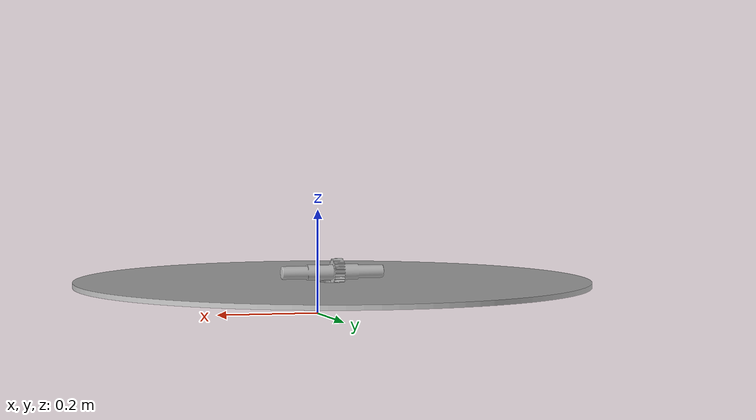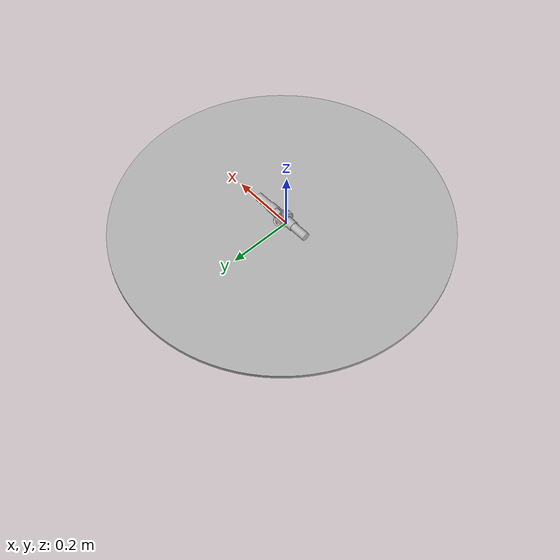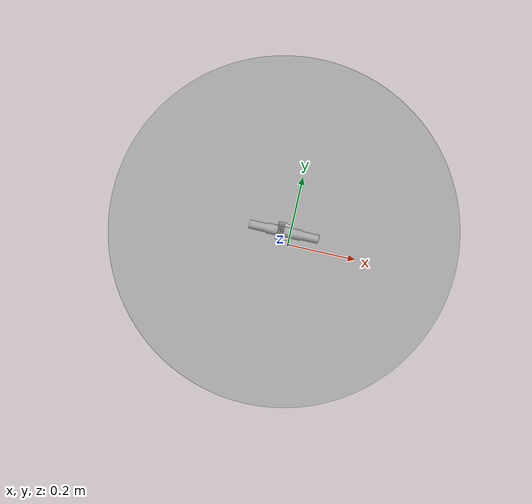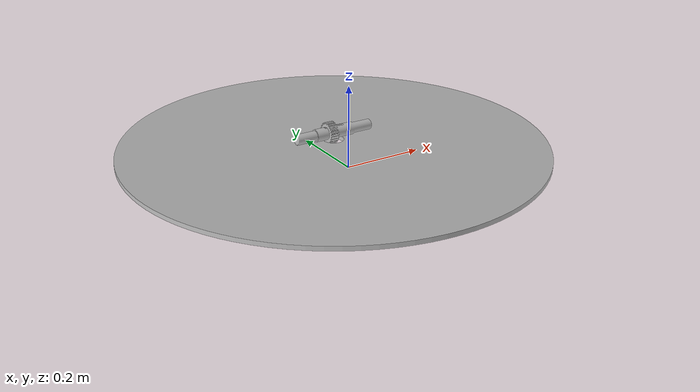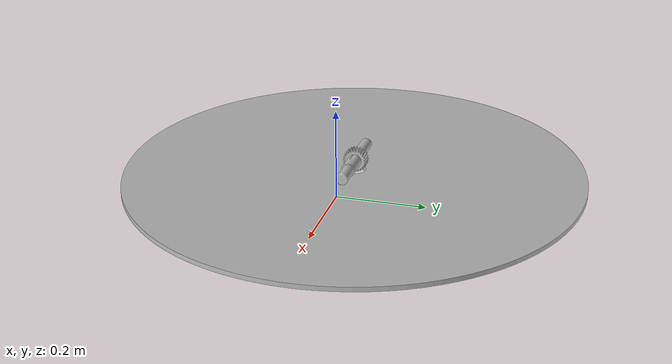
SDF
<?xml version="1.0" ?>
<sdf version="1.6">
	<model name="">
		<link name="base">
			<self_collide>false</self_collide>
			<pose>-0.019172666755476468 0.035670005359733345 0.053947812311401916 0.0 -0.0 0.0</pose>
			<inertial>
				<pose>0.0 0.0 0.0 0 0 0</pose>
				<mass>0.5499727599899886</mass>
				<inertia>
					<ixx>0.0008379291388991572</ixx>
					<ixy>2.5328672759172835e-11</ixy>
					<ixz>-1.80126788320667e-07</ixz>
					<iyy>0.0024143127774998324</iyy>
					<iyz>-1.260642333456019e-09</iyz>
					<izz>0.002085300657936364</izz>
				</inertia>
			</inertial>
			<collision name="base_collision">
				<geometry>
					<mesh>
						<uri>model:///meshes/CAD/base.stl</uri>
						<scale>0.001 0.001 0.001</scale>
					</mesh>
				</geometry>
			</collision>
			<visual name="base_visual">
				<geometry>
					<mesh>
						<uri>model:///meshes/CAD/base.stl</uri>
						<scale>0.001 0.001 0.001</scale>
					</mesh>
				</geometry>
			</visual>
		</link>
		<link name="shaft">
			<self_collide>false</self_collide>
			<pose>-0.02066100896479136 0.03567001266373968 0.08228449770913322 0.0 -0.0 0.0</pose>
			<inertial>
				<pose>0.0 0.0 0.0 0 0 0</pose>
				<mass>1.089337301880407</mass>
				<inertia>
					<ixx>0.00015787972033931512</ixx>
					<ixy>-1.482735640934152e-11</ixy>
					<ixz>3.5356524141363367e-07</ixz>
					<iyy>0.0027977672247346008</iyy>
					<iyz>9.571707337840963e-11</iyz>
					<izz>0.002800534679014474</izz>
				</inertia>
			</inertial>
			<collision name="shaft_collision">
				<geometry>
					<mesh>
						<uri>model:///meshes/CAD/shaft.stl</uri>
						<scale>0.001 0.001 0.001</scale>
					</mesh>
				</geometry>
			</collision>
			<visual name="shaft_visual">
				<geometry>
					<mesh>
						<uri>model:///meshes/CAD/shaft.stl</uri>
						<scale>0.001 0.001 0.001</scale>
					</mesh>
				</geometry>
			</visual>
		</link>
		<joint name="rot1" type="revolute">
			<parent>base</parent>
			<child>shaft</child>
			<pose>0.06943161461044599 0.01687036893080189 0.013193300033380985 0 0 0</pose>
			<axis>
				<xyz>0.9999999999999981 1.5371486682968875e-15 3.1363800445660964e-15</xyz>
				<limit>
					<lower>0.0</lower>
					<upper>0.0</upper>
				</limit>
				<use_parent_model_frame>0</use_parent_model_frame>
			</axis>
		</joint>
	</model>
</sdf>
